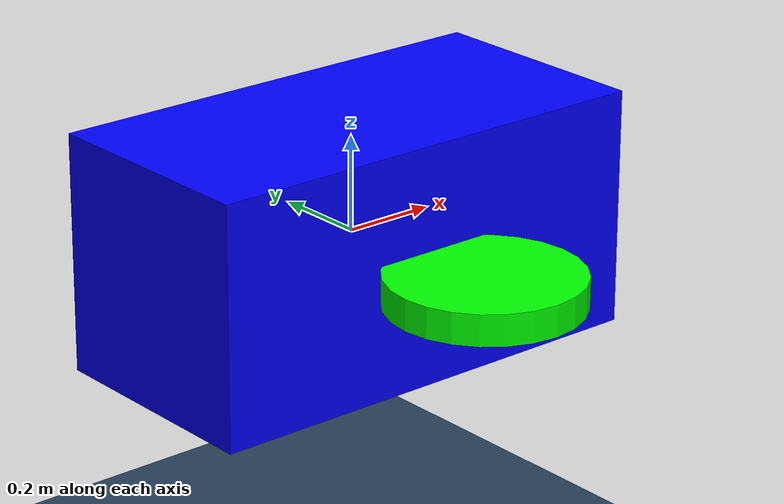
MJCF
<mujoco model="bee">
  <compiler angle="radian"/>

    <asset>
    <texture name="grid" type="2d" builtin="checker" width="512" height="512" rgb1=".1 .2 .3" rgb2=".2 .3 .4"/>
    <material name="grid" texture="grid" texrepeat="1 1" texuniform="true" reflectance=".2"/>
  </asset>

  <statistic meansize="0.503891" extent="1.63278" center="0.195759 0 0"/>
  <worldbody>
    <geom type="plane" size="3 3 .01" material="grid" pos="0 0 -1.0"/>
    <body name="body">
        <geom size="0.5 0.25 0.25" type="box" rgba="0 0 1 1" />
        <body name="left_wing" pos="0 0.4 0" quat="0 0.707107 0.707107 0">
          <joint name="left_link" pos="-0.2 0 0" axis="0 1 0"/>
          <geom type="cylinder" size="0.2 0.0325" rgba="0 1 0 1"/>
        </body>
        <body name="right_wing" pos="0 -0.4 0" quat="0 0.707107 0.707107 0">
          <joint name="right_link" pos="0.2 0 0" axis="0 1 0"/>
          <geom type="cylinder" size="0.2 0.0325" rgba="0 1 0 1"/>
        </body>
    </body>
  </worldbody>

  <tendon>
    <fixed name="flap">
      <joint joint="left_link" coef="200"/>
      <joint joint="right_link" coef="200"/>
    </fixed>
  </tendon>

  <actuator>
    <motor name="flap" tendon="flap" ctrlrange="-1 1"/>
  </actuator>

  <sensor>
    <jointactuatorfrc name="right_link" joint="right_link"/>
    <jointactuatorfrc name="left_link" joint="left_link"/>
  </sensor>
</mujoco>
